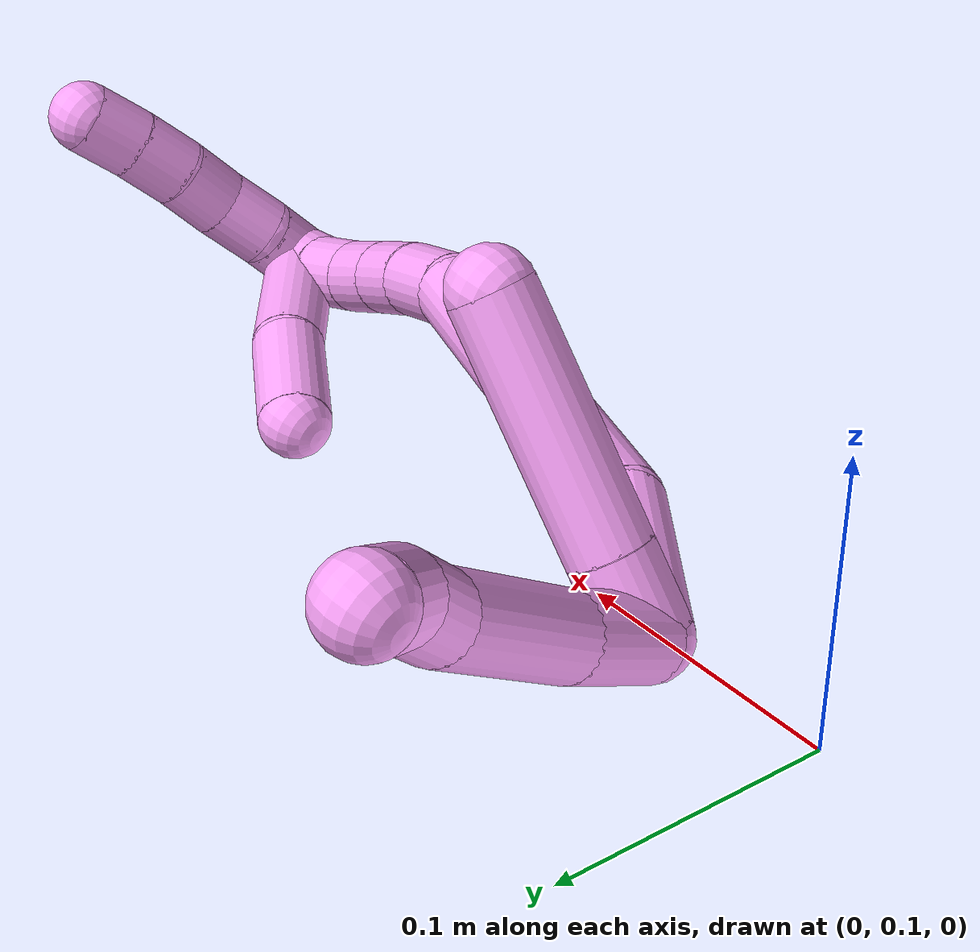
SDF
<sdf version="1.7">
 <world name="default">
  <model name="4">
   <static>0</static>
   <link name="4">
    <collision name="collision-cylinder-e_1_2_8">
     <pose>-0.016579 -0.002311 0.002662 0.714748 -1.36128 -0.587234</pose>
     <geometry><cylinder><radius>0.0125</radius><length>0.033899</length></cylinder></geometry>
     <surface>
      <friction><ode><mu>1.16</mu><mu2>1.16</mu2><slip1>0</slip1><slip2>0</slip2></ode></friction>
      <contact><ode><kp>1e+06</kp><kd>1</kd><max_vel>0</max_vel><min_depth>0.001</min_depth></ode></contact>
     </surface>
    </collision>
    <visual name="visual-cylinder-e_1_2_8">
     <pose>-0.016579 -0.002311 0.002662 0.714748 -1.36128 -0.587234</pose>
     <geometry><cylinder><radius>0.0125</radius><length>0.033899</length></cylinder></geometry>
     <material><ambient>1 0.65098 0.996078 1</ambient></material>
    </visual>
    <collision name="collision-cylinder-e_2_8_9">
     <pose>-0.060363 -0.012435 0.007747 1.27018 -1.27869 -1.00252</pose>
     <geometry><cylinder><radius>0.0125</radius><length>0.056818</length></cylinder></geometry>
     <surface>
      <friction><ode><mu>1.16</mu><mu2>1.16</mu2><slip1>0</slip1><slip2>0</slip2></ode></friction>
      <contact><ode><kp>1e+06</kp><kd>1</kd><max_vel>0</max_vel><min_depth>0.001</min_depth></ode></contact>
     </surface>
    </collision>
    <visual name="visual-cylinder-e_2_8_9">
     <pose>-0.060363 -0.012435 0.007747 1.27018 -1.27869 -1.00252</pose>
     <geometry><cylinder><radius>0.0125</radius><length>0.056818</length></cylinder></geometry>
     <material><ambient>1 0.65098 0.996078 1</ambient></material>
    </visual>
    <collision name="collision-cylinder-e_3_9_10">
     <pose>-0.098157 -0.02583 0.009372 1.71271 -1.08153 -1.21116</pose>
     <geometry><cylinder><radius>0.0125</radius><length>0.02399</length></cylinder></geometry>
     <surface>
      <friction><ode><mu>1.16</mu><mu2>1.16</mu2><slip1>0</slip1><slip2>0</slip2></ode></friction>
      <contact><ode><kp>1e+06</kp><kd>1</kd><max_vel>0</max_vel><min_depth>0.001</min_depth></ode></contact>
     </surface>
    </collision>
    <visual name="visual-cylinder-e_3_9_10">
     <pose>-0.098157 -0.02583 0.009372 1.71271 -1.08153 -1.21116</pose>
     <geometry><cylinder><radius>0.0125</radius><length>0.02399</length></cylinder></geometry>
     <material><ambient>1 0.65098 0.996078 1</ambient></material>
    </visual>
    <collision name="collision-cylinder-e_4_10_6">
     <pose>-0.123763 -0.038065 0.002128 2.34036 -1.01803 -1.84323</pose>
     <geometry><cylinder><radius>0.0125</radius><length>0.035293</length></cylinder></geometry>
     <surface>
      <friction><ode><mu>1.16</mu><mu2>1.16</mu2><slip1>0</slip1><slip2>0</slip2></ode></friction>
      <contact><ode><kp>1e+06</kp><kd>1</kd><max_vel>0</max_vel><min_depth>0.001</min_depth></ode></contact>
     </surface>
    </collision>
    <visual name="visual-cylinder-e_4_10_6">
     <pose>-0.123763 -0.038065 0.002128 2.34036 -1.01803 -1.84323</pose>
     <geometry><cylinder><radius>0.0125</radius><length>0.035293</length></cylinder></geometry>
     <material><ambient>1 0.65098 0.996078 1</ambient></material>
    </visual>
    <collision name="collision-cylinder-e_1_2_11">
     <pose>-0.003134 -0.008484 0.008525 0.783007 -0.254884 -0.105694</pose>
     <geometry><cylinder><radius>0.0125</radius><length>0.024857</length></cylinder></geometry>
     <surface>
      <friction><ode><mu>1.16</mu><mu2>1.16</mu2><slip1>0</slip1><slip2>0</slip2></ode></friction>
      <contact><ode><kp>1e+06</kp><kd>1</kd><max_vel>0</max_vel><min_depth>0.001</min_depth></ode></contact>
     </surface>
    </collision>
    <visual name="visual-cylinder-e_1_2_11">
     <pose>-0.003134 -0.008484 0.008525 0.783007 -0.254884 -0.105694</pose>
     <geometry><cylinder><radius>0.0125</radius><length>0.024857</length></cylinder></geometry>
     <material><ambient>1 0.65098 0.996078 1</ambient></material>
    </visual>
    <collision name="collision-cylinder-e_2_11_5">
     <pose>-0.015046 -0.042335 0.043337 0.767571 -0.235835 -0.095603</pose>
     <geometry><cylinder><radius>0.0125</radius><length>0.075143</length></cylinder></geometry>
     <surface>
      <friction><ode><mu>1.16</mu><mu2>1.16</mu2><slip1>0</slip1><slip2>0</slip2></ode></friction>
      <contact><ode><kp>1e+06</kp><kd>1</kd><max_vel>0</max_vel><min_depth>0.001</min_depth></ode></contact>
     </surface>
    </collision>
    <visual name="visual-cylinder-e_2_11_5">
     <pose>-0.015046 -0.042335 0.043337 0.767571 -0.235835 -0.095603</pose>
     <geometry><cylinder><radius>0.0125</radius><length>0.075143</length></cylinder></geometry>
     <material><ambient>1 0.65098 0.996078 1</ambient></material>
    </visual>
    <collision name="collision-cylinder-e_1_2_12">
     <pose>0.017189 -0.004955 0.020388 0.238429 0.686363 0.085549</pose>
     <geometry><cylinder><radius>0.0125</radius><length>0.054247</length></cylinder></geometry>
     <surface>
      <friction><ode><mu>1.16</mu><mu2>1.16</mu2><slip1>0</slip1><slip2>0</slip2></ode></friction>
      <contact><ode><kp>1e+06</kp><kd>1</kd><max_vel>0</max_vel><min_depth>0.001</min_depth></ode></contact>
     </surface>
    </collision>
    <visual name="visual-cylinder-e_1_2_12">
     <pose>0.017189 -0.004955 0.020388 0.238429 0.686363 0.085549</pose>
     <geometry><cylinder><radius>0.0125</radius><length>0.054247</length></cylinder></geometry>
     <material><ambient>1 0.65098 0.996078 1</ambient></material>
    </visual>
    <collision name="collision-cylinder-e_2_12_13">
     <pose>0.066563 -0.006872 0.101972 -0.049615 0.48368 -0.012241</pose>
     <geometry><cylinder><radius>0.0125</radius><length>0.138421</length></cylinder></geometry>
     <surface>
      <friction><ode><mu>1.16</mu><mu2>1.16</mu2><slip1>0</slip1><slip2>0</slip2></ode></friction>
      <contact><ode><kp>1e+06</kp><kd>1</kd><max_vel>0</max_vel><min_depth>0.001</min_depth></ode></contact>
     </surface>
    </collision>
    <visual name="visual-cylinder-e_2_12_13">
     <pose>0.066563 -0.006872 0.101972 -0.049615 0.48368 -0.012241</pose>
     <geometry><cylinder><radius>0.0125</radius><length>0.138421</length></cylinder></geometry>
     <material><ambient>1 0.65098 0.996078 1</ambient></material>
    </visual>
    <collision name="collision-cylinder-e_3_13_14">
     <pose>0.103641 0.000662 0.174365 -0.38173 0.385168 -0.075319</pose>
     <geometry><cylinder><radius>0.0125</radius><length>0.026039</length></cylinder></geometry>
     <surface>
      <friction><ode><mu>1.16</mu><mu2>1.16</mu2><slip1>0</slip1><slip2>0</slip2></ode></friction>
      <contact><ode><kp>1e+06</kp><kd>1</kd><max_vel>0</max_vel><min_depth>0.001</min_depth></ode></contact>
     </surface>
    </collision>
    <visual name="visual-cylinder-e_3_13_14">
     <pose>0.103641 0.000662 0.174365 -0.38173 0.385168 -0.075319</pose>
     <geometry><cylinder><radius>0.0125</radius><length>0.026039</length></cylinder></geometry>
     <material><ambient>1 0.65098 0.996078 1</ambient></material>
    </visual>
    <collision name="collision-cylinder-e_4_14_15">
     <pose>0.112238 0.00979 0.194066 -0.498911 0.36548 -0.094091</pose>
     <geometry><cylinder><radius>0.0125</radius><length>0.020739</length></cylinder></geometry>
     <surface>
      <friction><ode><mu>1.16</mu><mu2>1.16</mu2><slip1>0</slip1><slip2>0</slip2></ode></friction>
      <contact><ode><kp>1e+06</kp><kd>1</kd><max_vel>0</max_vel><min_depth>0.001</min_depth></ode></contact>
     </surface>
    </collision>
    <visual name="visual-cylinder-e_4_14_15">
     <pose>0.112238 0.00979 0.194066 -0.498911 0.36548 -0.094091</pose>
     <geometry><cylinder><radius>0.0125</radius><length>0.020739</length></cylinder></geometry>
     <material><ambient>1 0.65098 0.996078 1</ambient></material>
    </visual>
    <collision name="collision-cylinder-e_5_15_16">
     <pose>0.119208 0.019159 0.210986 -0.512506 0.325935 -0.08611</pose>
     <geometry><cylinder><radius>0.0125</radius><length>0.020387</length></cylinder></geometry>
     <surface>
      <friction><ode><mu>1.16</mu><mu2>1.16</mu2><slip1>0</slip1><slip2>0</slip2></ode></friction>
      <contact><ode><kp>1e+06</kp><kd>1</kd><max_vel>0</max_vel><min_depth>0.001</min_depth></ode></contact>
     </surface>
    </collision>
    <visual name="visual-cylinder-e_5_15_16">
     <pose>0.119208 0.019159 0.210986 -0.512506 0.325935 -0.08611</pose>
     <geometry><cylinder><radius>0.0125</radius><length>0.020387</length></cylinder></geometry>
     <material><ambient>1 0.65098 0.996078 1</ambient></material>
    </visual>
    <collision name="collision-cylinder-e_6_16_17">
     <pose>0.124777 0.027911 0.2283 -0.424039 0.231866 -0.050125</pose>
     <geometry><cylinder><radius>0.0125</radius><length>0.020063</length></cylinder></geometry>
     <surface>
      <friction><ode><mu>1.16</mu><mu2>1.16</mu2><slip1>0</slip1><slip2>0</slip2></ode></friction>
      <contact><ode><kp>1e+06</kp><kd>1</kd><max_vel>0</max_vel><min_depth>0.001</min_depth></ode></contact>
     </surface>
    </collision>
    <visual name="visual-cylinder-e_6_16_17">
     <pose>0.124777 0.027911 0.2283 -0.424039 0.231866 -0.050125</pose>
     <geometry><cylinder><radius>0.0125</radius><length>0.020063</length></cylinder></geometry>
     <material><ambient>1 0.65098 0.996078 1</ambient></material>
    </visual>
    <collision name="collision-cylinder-e_7_17_1">
     <pose>0.13087 0.034736 0.246077 -0.306283 0.38629 -0.060358</pose>
     <geometry><cylinder><radius>0.0125</radius><length>0.020106</length></cylinder></geometry>
     <surface>
      <friction><ode><mu>1.16</mu><mu2>1.16</mu2><slip1>0</slip1><slip2>0</slip2></ode></friction>
      <contact><ode><kp>1e+06</kp><kd>1</kd><max_vel>0</max_vel><min_depth>0.001</min_depth></ode></contact>
     </surface>
    </collision>
    <visual name="visual-cylinder-e_7_17_1">
     <pose>0.13087 0.034736 0.246077 -0.306283 0.38629 -0.060358</pose>
     <geometry><cylinder><radius>0.0125</radius><length>0.020106</length></cylinder></geometry>
     <material><ambient>1 0.65098 0.996078 1</ambient></material>
    </visual>
    <collision name="collision-cylinder-e_1_1_18">
     <pose>0.126419 0.033205 0.258605 0.871356 -0.968035 -0.48003</pose>
     <geometry><cylinder><radius>0.0125</radius><length>0.02</length></cylinder></geometry>
     <surface>
      <friction><ode><mu>1.16</mu><mu2>1.16</mu2><slip1>0</slip1><slip2>0</slip2></ode></friction>
      <contact><ode><kp>1e+06</kp><kd>1</kd><max_vel>0</max_vel><min_depth>0.001</min_depth></ode></contact>
     </surface>
    </collision>
    <visual name="visual-cylinder-e_1_1_18">
     <pose>0.126419 0.033205 0.258605 0.871356 -0.968035 -0.48003</pose>
     <geometry><cylinder><radius>0.0125</radius><length>0.02</length></cylinder></geometry>
     <material><ambient>1 0.65098 0.996078 1</ambient></material>
    </visual>
    <collision name="collision-cylinder-e_2_18_19">
     <pose>0.111001 0.025592 0.268396 0.48994 -0.800934 -0.210879</pose>
     <geometry><cylinder><radius>0.0125</radius><length>0.02</length></cylinder></geometry>
     <surface>
      <friction><ode><mu>1.16</mu><mu2>1.16</mu2><slip1>0</slip1><slip2>0</slip2></ode></friction>
      <contact><ode><kp>1e+06</kp><kd>1</kd><max_vel>0</max_vel><min_depth>0.001</min_depth></ode></contact>
     </surface>
    </collision>
    <visual name="visual-cylinder-e_2_18_19">
     <pose>0.111001 0.025592 0.268396 0.48994 -0.800934 -0.210879</pose>
     <geometry><cylinder><radius>0.0125</radius><length>0.02</length></cylinder></geometry>
     <material><ambient>1 0.65098 0.996078 1</ambient></material>
    </visual>
    <collision name="collision-cylinder-e_3_19_20">
     <pose>0.095825 0.018062 0.278775 0.787429 -0.926667 -0.409268</pose>
     <geometry><cylinder><radius>0.0125</radius><length>0.02</length></cylinder></geometry>
     <surface>
      <friction><ode><mu>1.16</mu><mu2>1.16</mu2><slip1>0</slip1><slip2>0</slip2></ode></friction>
      <contact><ode><kp>1e+06</kp><kd>1</kd><max_vel>0</max_vel><min_depth>0.001</min_depth></ode></contact>
     </surface>
    </collision>
    <visual name="visual-cylinder-e_3_19_20">
     <pose>0.095825 0.018062 0.278775 0.787429 -0.926667 -0.409268</pose>
     <geometry><cylinder><radius>0.0125</radius><length>0.02</length></cylinder></geometry>
     <material><ambient>1 0.65098 0.996078 1</ambient></material>
    </visual>
    <collision name="collision-cylinder-e_4_20_21">
     <pose>0.07997 0.010398 0.288173 0.583795 -0.904107 -0.289776</pose>
     <geometry><cylinder><radius>0.0125</radius><length>0.02</length></cylinder></geometry>
     <surface>
      <friction><ode><mu>1.16</mu><mu2>1.16</mu2><slip1>0</slip1><slip2>0</slip2></ode></friction>
      <contact><ode><kp>1e+06</kp><kd>1</kd><max_vel>0</max_vel><min_depth>0.001</min_depth></ode></contact>
     </surface>
    </collision>
    <visual name="visual-cylinder-e_4_20_21">
     <pose>0.07997 0.010398 0.288173 0.583795 -0.904107 -0.289776</pose>
     <geometry><cylinder><radius>0.0125</radius><length>0.02</length></cylinder></geometry>
     <material><ambient>1 0.65098 0.996078 1</ambient></material>
    </visual>
    <collision name="collision-cylinder-e_5_21_4">
     <pose>0.063974 0.004104 0.298378 0.519556 -0.950529 -0.271861</pose>
     <geometry><cylinder><radius>0.0125</radius><length>0.02</length></cylinder></geometry>
     <surface>
      <friction><ode><mu>1.16</mu><mu2>1.16</mu2><slip1>0</slip1><slip2>0</slip2></ode></friction>
      <contact><ode><kp>1e+06</kp><kd>1</kd><max_vel>0</max_vel><min_depth>0.001</min_depth></ode></contact>
     </surface>
    </collision>
    <visual name="visual-cylinder-e_5_21_4">
     <pose>0.063974 0.004104 0.298378 0.519556 -0.950529 -0.271861</pose>
     <geometry><cylinder><radius>0.0125</radius><length>0.02</length></cylinder></geometry>
     <material><ambient>1 0.65098 0.996078 1</ambient></material>
    </visual>
    <collision name="collision-cylinder-e_1_1_22">
     <pose>0.112815 0.041427 0.23449 -2.95407 -0.809108 2.70921</pose>
     <geometry><cylinder><radius>0.0125</radius><length>0.060365</length></cylinder></geometry>
     <surface>
      <friction><ode><mu>1.16</mu><mu2>1.16</mu2><slip1>0</slip1><slip2>0</slip2></ode></friction>
      <contact><ode><kp>1e+06</kp><kd>1</kd><max_vel>0</max_vel><min_depth>0.001</min_depth></ode></contact>
     </surface>
    </collision>
    <visual name="visual-cylinder-e_1_1_22">
     <pose>0.112815 0.041427 0.23449 -2.95407 -0.809108 2.70921</pose>
     <geometry><cylinder><radius>0.0125</radius><length>0.060365</length></cylinder></geometry>
     <material><ambient>1 0.65098 0.996078 1</ambient></material>
    </visual>
    <collision name="collision-cylinder-e_2_22_3">
     <pose>0.079438 0.049734 0.19853 -2.8635 -0.621246 2.31936</pose>
     <geometry><cylinder><radius>0.0125</radius><length>0.039635</length></cylinder></geometry>
     <surface>
      <friction><ode><mu>1.16</mu><mu2>1.16</mu2><slip1>0</slip1><slip2>0</slip2></ode></friction>
      <contact><ode><kp>1e+06</kp><kd>1</kd><max_vel>0</max_vel><min_depth>0.001</min_depth></ode></contact>
     </surface>
    </collision>
    <visual name="visual-cylinder-e_2_22_3">
     <pose>0.079438 0.049734 0.19853 -2.8635 -0.621246 2.31936</pose>
     <geometry><cylinder><radius>0.0125</radius><length>0.039635</length></cylinder></geometry>
     <material><ambient>1 0.65098 0.996078 1</ambient></material>
    </visual>
    <collision name="collision-sphere-3">
     <pose>0.067903 0.054158 0.183034 0 -0 0</pose>
     <geometry><sphere><radius>0.0125</radius></sphere></geometry>
     <surface>
      <friction><ode><mu>1.16</mu><mu2>1.16</mu2><slip1>0</slip1><slip2>0</slip2></ode></friction>
      <contact><ode><kp>1e+06</kp><kd>1</kd><max_vel>0</max_vel><min_depth>0.001</min_depth></ode></contact>
     </surface>
    </collision>
    <visual name="visual-sphere-3">
     <pose>0.067903 0.054158 0.183034 0 -0 0</pose>
     <geometry><sphere><radius>0.0125</radius></sphere></geometry>
     <material><ambient>1 0.65098 0.996078 1</ambient></material>
    </visual>
    <collision name="collision-sphere-22">
     <pose>0.090973 0.04531 0.214025 0 -0 0</pose>
     <geometry><sphere><radius>0.0125</radius></sphere></geometry>
     <surface>
      <friction><ode><mu>1.16</mu><mu2>1.16</mu2><slip1>0</slip1><slip2>0</slip2></ode></friction>
      <contact><ode><kp>1e+06</kp><kd>1</kd><max_vel>0</max_vel><min_depth>0.001</min_depth></ode></contact>
     </surface>
    </collision>
    <visual name="visual-sphere-22">
     <pose>0.090973 0.04531 0.214025 0 -0 0</pose>
     <geometry><sphere><radius>0.0125</radius></sphere></geometry>
     <material><ambient>1 0.65098 0.996078 1</ambient></material>
    </visual>
    <collision name="collision-sphere-4">
     <pose>0.055837 0.001218 0.303423 0 -0 0</pose>
     <geometry><sphere><radius>0.0125</radius></sphere></geometry>
     <surface>
      <friction><ode><mu>1.16</mu><mu2>1.16</mu2><slip1>0</slip1><slip2>0</slip2></ode></friction>
      <contact><ode><kp>1e+06</kp><kd>1</kd><max_vel>0</max_vel><min_depth>0.001</min_depth></ode></contact>
     </surface>
    </collision>
    <visual name="visual-sphere-4">
     <pose>0.055837 0.001218 0.303423 0 -0 0</pose>
     <geometry><sphere><radius>0.0125</radius></sphere></geometry>
     <material><ambient>1 0.65098 0.996078 1</ambient></material>
    </visual>
    <collision name="collision-sphere-21">
     <pose>0.072111 0.00699 0.293332 0 -0 0</pose>
     <geometry><sphere><radius>0.0125</radius></sphere></geometry>
     <surface>
      <friction><ode><mu>1.16</mu><mu2>1.16</mu2><slip1>0</slip1><slip2>0</slip2></ode></friction>
      <contact><ode><kp>1e+06</kp><kd>1</kd><max_vel>0</max_vel><min_depth>0.001</min_depth></ode></contact>
     </surface>
    </collision>
    <visual name="visual-sphere-21">
     <pose>0.072111 0.00699 0.293332 0 -0 0</pose>
     <geometry><sphere><radius>0.0125</radius></sphere></geometry>
     <material><ambient>1 0.65098 0.996078 1</ambient></material>
    </visual>
    <collision name="collision-sphere-20">
     <pose>0.087829 0.013807 0.283013 0 -0 0</pose>
     <geometry><sphere><radius>0.0125</radius></sphere></geometry>
     <surface>
      <friction><ode><mu>1.16</mu><mu2>1.16</mu2><slip1>0</slip1><slip2>0</slip2></ode></friction>
      <contact><ode><kp>1e+06</kp><kd>1</kd><max_vel>0</max_vel><min_depth>0.001</min_depth></ode></contact>
     </surface>
    </collision>
    <visual name="visual-sphere-20">
     <pose>0.087829 0.013807 0.283013 0 -0 0</pose>
     <geometry><sphere><radius>0.0125</radius></sphere></geometry>
     <material><ambient>1 0.65098 0.996078 1</ambient></material>
    </visual>
    <collision name="collision-sphere-11">
     <pose>-0.006267 -0.016968 0.017049 0 -0 0</pose>
     <geometry><sphere><radius>0.0125</radius></sphere></geometry>
     <surface>
      <friction><ode><mu>1.16</mu><mu2>1.16</mu2><slip1>0</slip1><slip2>0</slip2></ode></friction>
      <contact><ode><kp>1e+06</kp><kd>1</kd><max_vel>0</max_vel><min_depth>0.001</min_depth></ode></contact>
     </surface>
    </collision>
    <visual name="visual-sphere-11">
     <pose>-0.006267 -0.016968 0.017049 0 -0 0</pose>
     <geometry><sphere><radius>0.0125</radius></sphere></geometry>
     <material><ambient>1 0.65098 0.996078 1</ambient></material>
    </visual>
    <collision name="collision-sphere-6">
     <pose>-0.138781 -0.044719 -0.004319 0 -0 0</pose>
     <geometry><sphere><radius>0.0125</radius></sphere></geometry>
     <surface>
      <friction><ode><mu>1.16</mu><mu2>1.16</mu2><slip1>0</slip1><slip2>0</slip2></ode></friction>
      <contact><ode><kp>1e+06</kp><kd>1</kd><max_vel>0</max_vel><min_depth>0.001</min_depth></ode></contact>
     </surface>
    </collision>
    <visual name="visual-sphere-6">
     <pose>-0.138781 -0.044719 -0.004319 0 -0 0</pose>
     <geometry><sphere><radius>0.0125</radius></sphere></geometry>
     <material><ambient>1 0.65098 0.996078 1</ambient></material>
    </visual>
    <collision name="collision-sphere-10">
     <pose>-0.108744 -0.03141 0.008575 0 -0 0</pose>
     <geometry><sphere><radius>0.0125</radius></sphere></geometry>
     <surface>
      <friction><ode><mu>1.16</mu><mu2>1.16</mu2><slip1>0</slip1><slip2>0</slip2></ode></friction>
      <contact><ode><kp>1e+06</kp><kd>1</kd><max_vel>0</max_vel><min_depth>0.001</min_depth></ode></contact>
     </surface>
    </collision>
    <visual name="visual-sphere-10">
     <pose>-0.108744 -0.03141 0.008575 0 -0 0</pose>
     <geometry><sphere><radius>0.0125</radius></sphere></geometry>
     <material><ambient>1 0.65098 0.996078 1</ambient></material>
    </visual>
    <collision name="collision-sphere-9">
     <pose>-0.087569 -0.020249 0.01017 0 -0 0</pose>
     <geometry><sphere><radius>0.0125</radius></sphere></geometry>
     <surface>
      <friction><ode><mu>1.16</mu><mu2>1.16</mu2><slip1>0</slip1><slip2>0</slip2></ode></friction>
      <contact><ode><kp>1e+06</kp><kd>1</kd><max_vel>0</max_vel><min_depth>0.001</min_depth></ode></contact>
     </surface>
    </collision>
    <visual name="visual-sphere-9">
     <pose>-0.087569 -0.020249 0.01017 0 -0 0</pose>
     <geometry><sphere><radius>0.0125</radius></sphere></geometry>
     <material><ambient>1 0.65098 0.996078 1</ambient></material>
    </visual>
    <collision name="collision-sphere-2">
     <geometry><sphere><radius>0.0125</radius></sphere></geometry>
     <surface>
      <friction><ode><mu>1.16</mu><mu2>1.16</mu2><slip1>0</slip1><slip2>0</slip2></ode></friction>
      <contact><ode><kp>1e+06</kp><kd>1</kd><max_vel>0</max_vel><min_depth>0.001</min_depth></ode></contact>
     </surface>
    </collision>
    <visual name="visual-sphere-2">
     <geometry><sphere><radius>0.0125</radius></sphere></geometry>
     <material><ambient>1 0.65098 0.996078 1</ambient></material>
    </visual>
    <collision name="collision-sphere-19">
     <pose>0.103821 0.022317 0.274538 0 -0 0</pose>
     <geometry><sphere><radius>0.0125</radius></sphere></geometry>
     <surface>
      <friction><ode><mu>1.16</mu><mu2>1.16</mu2><slip1>0</slip1><slip2>0</slip2></ode></friction>
      <contact><ode><kp>1e+06</kp><kd>1</kd><max_vel>0</max_vel><min_depth>0.001</min_depth></ode></contact>
     </surface>
    </collision>
    <visual name="visual-sphere-19">
     <pose>0.103821 0.022317 0.274538 0 -0 0</pose>
     <geometry><sphere><radius>0.0125</radius></sphere></geometry>
     <material><ambient>1 0.65098 0.996078 1</ambient></material>
    </visual>
    <collision name="collision-sphere-8">
     <pose>-0.033158 -0.004621 0.005325 0 -0 0</pose>
     <geometry><sphere><radius>0.0125</radius></sphere></geometry>
     <surface>
      <friction><ode><mu>1.16</mu><mu2>1.16</mu2><slip1>0</slip1><slip2>0</slip2></ode></friction>
      <contact><ode><kp>1e+06</kp><kd>1</kd><max_vel>0</max_vel><min_depth>0.001</min_depth></ode></contact>
     </surface>
    </collision>
    <visual name="visual-sphere-8">
     <pose>-0.033158 -0.004621 0.005325 0 -0 0</pose>
     <geometry><sphere><radius>0.0125</radius></sphere></geometry>
     <material><ambient>1 0.65098 0.996078 1</ambient></material>
    </visual>
    <collision name="collision-sphere-5">
     <pose>-0.023825 -0.067702 0.069625 0 -0 0</pose>
     <geometry><sphere><radius>0.0125</radius></sphere></geometry>
     <surface>
      <friction><ode><mu>1.16</mu><mu2>1.16</mu2><slip1>0</slip1><slip2>0</slip2></ode></friction>
      <contact><ode><kp>1e+06</kp><kd>1</kd><max_vel>0</max_vel><min_depth>0.001</min_depth></ode></contact>
     </surface>
    </collision>
    <visual name="visual-sphere-5">
     <pose>-0.023825 -0.067702 0.069625 0 -0 0</pose>
     <geometry><sphere><radius>0.0125</radius></sphere></geometry>
     <material><ambient>1 0.65098 0.996078 1</ambient></material>
    </visual>
    <collision name="collision-sphere-12">
     <pose>0.034378 -0.009911 0.040776 0 -0 0</pose>
     <geometry><sphere><radius>0.0125</radius></sphere></geometry>
     <surface>
      <friction><ode><mu>1.16</mu><mu2>1.16</mu2><slip1>0</slip1><slip2>0</slip2></ode></friction>
      <contact><ode><kp>1e+06</kp><kd>1</kd><max_vel>0</max_vel><min_depth>0.001</min_depth></ode></contact>
     </surface>
    </collision>
    <visual name="visual-sphere-12">
     <pose>0.034378 -0.009911 0.040776 0 -0 0</pose>
     <geometry><sphere><radius>0.0125</radius></sphere></geometry>
     <material><ambient>1 0.65098 0.996078 1</ambient></material>
    </visual>
    <collision name="collision-sphere-13">
     <pose>0.098749 -0.003833 0.163168 0 -0 0</pose>
     <geometry><sphere><radius>0.0125</radius></sphere></geometry>
     <surface>
      <friction><ode><mu>1.16</mu><mu2>1.16</mu2><slip1>0</slip1><slip2>0</slip2></ode></friction>
      <contact><ode><kp>1e+06</kp><kd>1</kd><max_vel>0</max_vel><min_depth>0.001</min_depth></ode></contact>
     </surface>
    </collision>
    <visual name="visual-sphere-13">
     <pose>0.098749 -0.003833 0.163168 0 -0 0</pose>
     <geometry><sphere><radius>0.0125</radius></sphere></geometry>
     <material><ambient>1 0.65098 0.996078 1</ambient></material>
    </visual>
    <collision name="collision-sphere-14">
     <pose>0.108532 0.005156 0.185562 0 -0 0</pose>
     <geometry><sphere><radius>0.0125</radius></sphere></geometry>
     <surface>
      <friction><ode><mu>1.16</mu><mu2>1.16</mu2><slip1>0</slip1><slip2>0</slip2></ode></friction>
      <contact><ode><kp>1e+06</kp><kd>1</kd><max_vel>0</max_vel><min_depth>0.001</min_depth></ode></contact>
     </surface>
    </collision>
    <visual name="visual-sphere-14">
     <pose>0.108532 0.005156 0.185562 0 -0 0</pose>
     <geometry><sphere><radius>0.0125</radius></sphere></geometry>
     <material><ambient>1 0.65098 0.996078 1</ambient></material>
    </visual>
    <collision name="collision-sphere-15">
     <pose>0.115944 0.014424 0.20257 0 -0 0</pose>
     <geometry><sphere><radius>0.0125</radius></sphere></geometry>
     <surface>
      <friction><ode><mu>1.16</mu><mu2>1.16</mu2><slip1>0</slip1><slip2>0</slip2></ode></friction>
      <contact><ode><kp>1e+06</kp><kd>1</kd><max_vel>0</max_vel><min_depth>0.001</min_depth></ode></contact>
     </surface>
    </collision>
    <visual name="visual-sphere-15">
     <pose>0.115944 0.014424 0.20257 0 -0 0</pose>
     <geometry><sphere><radius>0.0125</radius></sphere></geometry>
     <material><ambient>1 0.65098 0.996078 1</ambient></material>
    </visual>
    <collision name="collision-sphere-16">
     <pose>0.122472 0.023894 0.219402 0 -0 0</pose>
     <geometry><sphere><radius>0.0125</radius></sphere></geometry>
     <surface>
      <friction><ode><mu>1.16</mu><mu2>1.16</mu2><slip1>0</slip1><slip2>0</slip2></ode></friction>
      <contact><ode><kp>1e+06</kp><kd>1</kd><max_vel>0</max_vel><min_depth>0.001</min_depth></ode></contact>
     </surface>
    </collision>
    <visual name="visual-sphere-16">
     <pose>0.122472 0.023894 0.219402 0 -0 0</pose>
     <geometry><sphere><radius>0.0125</radius></sphere></geometry>
     <material><ambient>1 0.65098 0.996078 1</ambient></material>
    </visual>
    <collision name="collision-sphere-17">
     <pose>0.127082 0.031928 0.237198 0 -0 0</pose>
     <geometry><sphere><radius>0.0125</radius></sphere></geometry>
     <surface>
      <friction><ode><mu>1.16</mu><mu2>1.16</mu2><slip1>0</slip1><slip2>0</slip2></ode></friction>
      <contact><ode><kp>1e+06</kp><kd>1</kd><max_vel>0</max_vel><min_depth>0.001</min_depth></ode></contact>
     </surface>
    </collision>
    <visual name="visual-sphere-17">
     <pose>0.127082 0.031928 0.237198 0 -0 0</pose>
     <geometry><sphere><radius>0.0125</radius></sphere></geometry>
     <material><ambient>1 0.65098 0.996078 1</ambient></material>
    </visual>
    <collision name="collision-sphere-1">
     <pose>0.134657 0.037543 0.254955 0 -0 0</pose>
     <geometry><sphere><radius>0.0125</radius></sphere></geometry>
     <surface>
      <friction><ode><mu>1.16</mu><mu2>1.16</mu2><slip1>0</slip1><slip2>0</slip2></ode></friction>
      <contact><ode><kp>1e+06</kp><kd>1</kd><max_vel>0</max_vel><min_depth>0.001</min_depth></ode></contact>
     </surface>
    </collision>
    <visual name="visual-sphere-1">
     <pose>0.134657 0.037543 0.254955 0 -0 0</pose>
     <geometry><sphere><radius>0.0125</radius></sphere></geometry>
     <material><ambient>1 0.65098 0.996078 1</ambient></material>
    </visual>
    <collision name="collision-sphere-18">
     <pose>0.118182 0.028867 0.262255 0 -0 0</pose>
     <geometry><sphere><radius>0.0125</radius></sphere></geometry>
     <surface>
      <friction><ode><mu>1.16</mu><mu2>1.16</mu2><slip1>0</slip1><slip2>0</slip2></ode></friction>
      <contact><ode><kp>1e+06</kp><kd>1</kd><max_vel>0</max_vel><min_depth>0.001</min_depth></ode></contact>
     </surface>
    </collision>
    <visual name="visual-sphere-18">
     <pose>0.118182 0.028867 0.262255 0 -0 0</pose>
     <geometry><sphere><radius>0.0125</radius></sphere></geometry>
     <material><ambient>1 0.65098 0.996078 1</ambient></material>
    </visual>
    <inertial>
     <pose>0.040422 0.001078 0.122379 0 -0 0</pose>
     <mass>0.75</mass>
     <inertia><ixx>0.000231</ixx><ixy>0</ixy><ixz>0</ixz><iyy>0.000324</iyy><iyz>0</iyz><izz>-9e-06</izz></inertia>
    </inertial>
   </link>
   <pose>0.000892 0.170419 0.069279 -1.37627 0.272138 -1.36838</pose>
  </model>
 </world>
</sdf>
